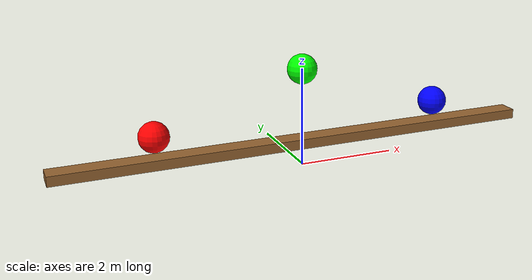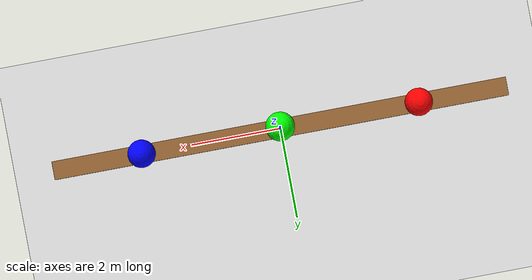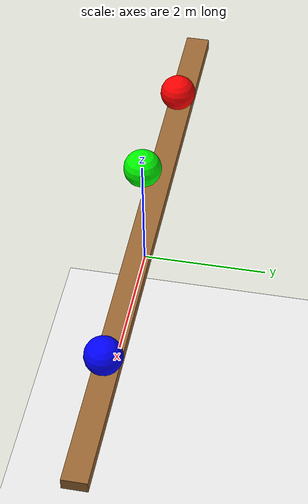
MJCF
<mujoco>
  <option gravity="0 0 -9.81"/>
  <worldbody>
    <!-- Ground -->
    <body name="ground" pos="0 0 -10">
      <geom type="plane" size="30 30 0.1" rgba="0.9 0.9 0.9 1"/>
    </body>
    <!-- Plank -->
    <body name="plank" pos="0 0 0.5">
      <geom type="box" size="5 0.2 0.1" density="0.5" rgba="0.6 0.4 0.2 1"/>
      <joint name="plank_joint" type="hinge" axis="0 1 0"/>
    </body>
    <!-- Mass Left -->
    <body name="mass_left" pos="-3 0 1">
      <geom type="sphere" size="0.3" density="2" rgba="1 0 0 1"/>
    </body>
    <!-- Mass Right -->
    <body name="mass_right" pos="3 0 1">
      <geom type="sphere" size="0.3" density="1" rgba="0 0 1 1"/>
    </body>
    <!-- Movable Mass -->
    <body name="mass_to_place" pos="0 0 2">
      <geom type="sphere" size="0.3" density="1.5" rgba="0 1 0 1"/>
    </body>
  </worldbody>
</mujoco>
